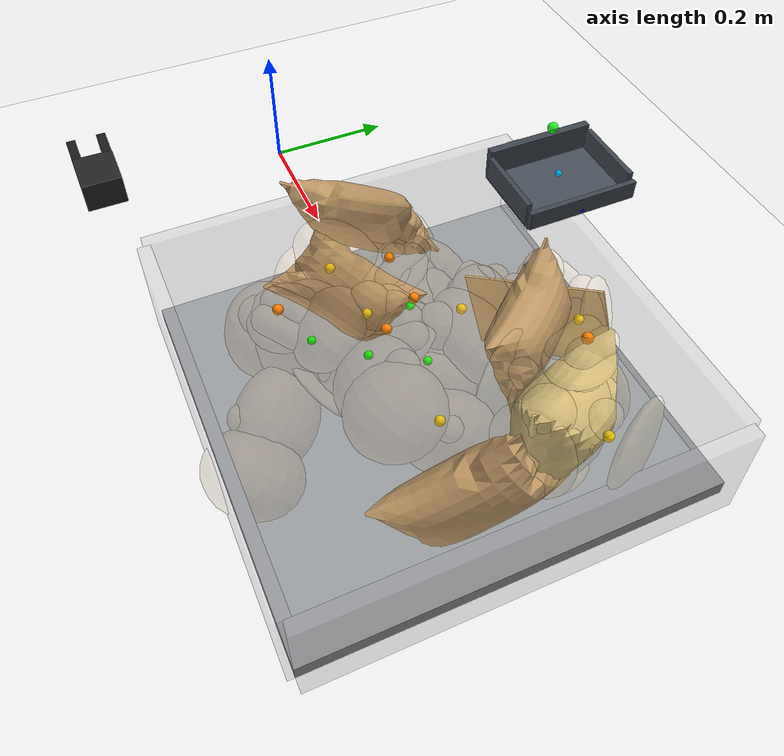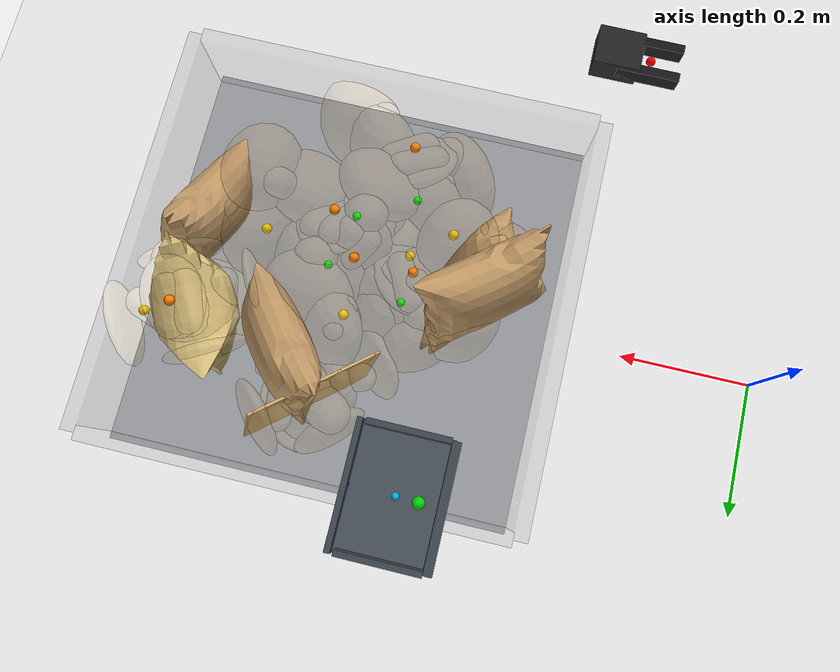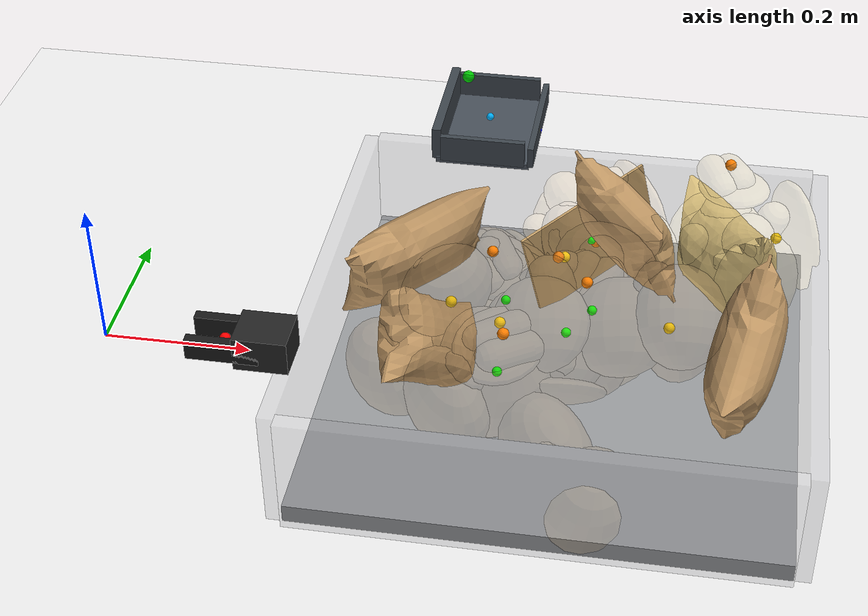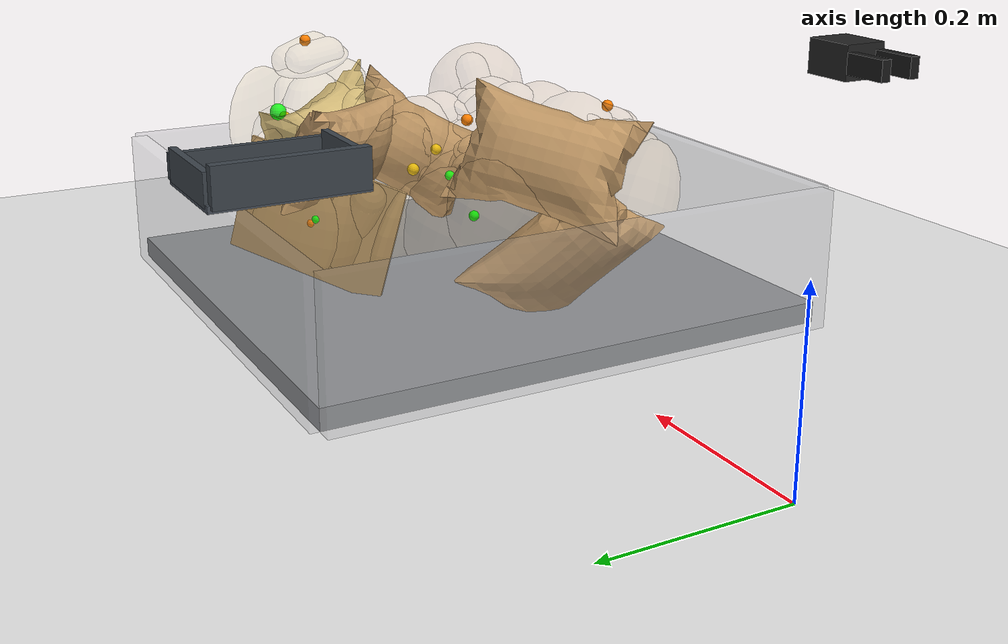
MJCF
<mujoco model="scene_preview">
  <compiler angle="radian" coordinate="local" inertiafromgeom="true" meshdir="D:/Michael/2025/01.Research/01.Parceldetection/16.Pybullet/bullet3-master (1)/bullet3-master/examples/pybullet/examples/DeformableTest/Sackcodex2/object"/>
  <option timestep="0.002" gravity="0 0 -9.81" integrator="implicitfast" iterations="100" tolerance="1e-8"/>
  <size memory="768M" nconmax="12000"/>

  <visual>
    <global azimuth="128" elevation="-20"/>
    <headlight ambient="0.34 0.34 0.34" diffuse="0.78 0.78 0.78" specular="0.15 0.15 0.15"/>
    <rgba haze="0.11 0.13 0.18 1"/>
  </visual>

  <default>
    <geom condim="4" friction="1.15 0.03 0.01" margin="0.003" solimp="0.93 0.98 0.003" solref="0.012 1"/>
    <joint damping="1.2" armature="0.002"/>
    <position kp="2500" forcelimited="true" forcerange="-420 420"/>
    <motor ctrllimited="true"/>
  </default>

  <asset>
    <mesh name="sack_0_visual_mesh" file="sack3.obj" scale="0.0725 0.0725 0.0746"/>
    <mesh name="sack_1_visual_mesh" file="sack3.obj" scale="0.0712 0.0712 0.0755"/>
    <mesh name="sack_2_visual_mesh" file="sack3.obj" scale="0.0737 0.0737 0.0780"/>
    <mesh name="sack_3_visual_mesh" file="sack2.obj" scale="0.0679 0.0679 0.0694"/>
    <mesh name="sack_4_visual_mesh" file="sack8.obj" scale="0.0725 0.0725 0.0798"/>
    <mesh name="sack_5_visual_mesh" file="sack3.obj" scale="0.0689 0.0689 0.0709"/>
  </asset>

  <worldbody>
    <light name="key" pos="0.85 0.15 1.8" dir="-0.2 -0.1 -1" directional="true"/>
    <geom name="floor" type="plane" size="2 2 0.1" rgba="0.93 0.93 0.93 1"/>
    <geom name="work_pad" type="box" pos="0.62 0 0.012" size="0.30 0.30 0.012" rgba="0.60 0.61 0.62 1" friction="1.4 0.05 0.01"/>
    <geom name="corral_front" type="box" pos="0.93 0.00 0.08" size="0.010 0.30 0.08" rgba="0.55 0.55 0.58 0.22" friction="1.0 0.03 0.01"/>
    <geom name="corral_back" type="box" pos="0.31 0.00 0.08" size="0.010 0.30 0.08" rgba="0.55 0.55 0.58 0.18" friction="1.0 0.03 0.01"/>
    <geom name="corral_left" type="box" pos="0.62 0.30 0.08" size="0.30 0.010 0.08" rgba="0.55 0.55 0.58 0.14" friction="1.0 0.03 0.01"/>
    <geom name="corral_right" type="box" pos="0.62 -0.30 0.08" size="0.30 0.010 0.08" rgba="0.55 0.55 0.58 0.14" friction="1.0 0.03 0.01"/>
    <camera name="overview" pos="1.22 0.00 0.92" xyaxes="0 1 0 -0.46 0 0.88"/>

    <body name="gripper_mocap" mocap="true" pos="0.36 -0.33 0.30" quat="0.707107 0 -0.707107 0"/>
    <body name="scoop_mocap" mocap="true" pos="0.42 0.28 0.20" quat="1 0 0 0"/>

    <body name="gripper_ctrl_base" pos="0.36 -0.33 0.30">
      <inertial pos="0 0 0" mass="0.001" diaginertia="1e-6 1e-6 1e-6"/>
      <joint name="gripper_ctrl_x" type="slide" axis="1 0 0" limited="true" range="0.20 1.00"/>
      <body name="gripper_ctrl_y_body">
        <inertial pos="0 0 0" mass="0.001" diaginertia="1e-6 1e-6 1e-6"/>
        <joint name="gripper_ctrl_y" type="slide" axis="0 1 0" limited="true" range="-0.60 0.60"/>
        <body name="gripper_ctrl_z_body">
          <inertial pos="0 0 0" mass="0.001" diaginertia="1e-6 1e-6 1e-6"/>
          <joint name="gripper_ctrl_z" type="slide" axis="0 0 1" limited="true" range="0.04 0.70"/>
          <body name="gripper_ctrl_yaw_body">
            <inertial pos="0 0 0" mass="0.001" diaginertia="1e-6 1e-6 1e-6"/>
            <joint name="gripper_ctrl_yaw" type="hinge" axis="0 0 1" limited="true" range="-3.1416 3.1416"/>
            <body name="gripper_ctrl_pitch_body">
              <inertial pos="0 0 0" mass="0.001" diaginertia="1e-6 1e-6 1e-6"/>
              <joint name="gripper_ctrl_pitch" type="hinge" axis="0 1 0" limited="true" range="-3.1416 3.1416"/>
              <body name="gripper_ctrl_roll_body">
                <inertial pos="0 0 0" mass="0.001" diaginertia="1e-6 1e-6 1e-6"/>
                <joint name="gripper_ctrl_roll" type="hinge" axis="1 0 0" limited="true" range="-3.1416 3.1416"/>
              </body>
            </body>
          </body>
        </body>
      </body>
    </body>

    <body name="scoop_ctrl_base" pos="0.42 0.28 0.20">
      <inertial pos="0 0 0" mass="0.001" diaginertia="1e-6 1e-6 1e-6"/>
      <joint name="scoop_ctrl_x" type="slide" axis="1 0 0" limited="true" range="0.20 1.00"/>
      <body name="scoop_ctrl_y_body">
        <inertial pos="0 0 0" mass="0.001" diaginertia="1e-6 1e-6 1e-6"/>
        <joint name="scoop_ctrl_y" type="slide" axis="0 1 0" limited="true" range="-0.60 0.60"/>
        <body name="scoop_ctrl_z_body">
          <inertial pos="0 0 0" mass="0.001" diaginertia="1e-6 1e-6 1e-6"/>
          <joint name="scoop_ctrl_z" type="slide" axis="0 0 1" limited="true" range="0.04 0.70"/>
          <body name="scoop_ctrl_yaw_body">
            <inertial pos="0 0 0" mass="0.001" diaginertia="1e-6 1e-6 1e-6"/>
            <joint name="scoop_ctrl_yaw" type="hinge" axis="0 0 1" limited="true" range="-3.1416 3.1416"/>
            <body name="scoop_ctrl_pitch_body">
              <inertial pos="0 0 0" mass="0.001" diaginertia="1e-6 1e-6 1e-6"/>
              <joint name="scoop_ctrl_pitch" type="hinge" axis="0 1 0" limited="true" range="-3.1416 3.1416"/>
              <body name="scoop_ctrl_roll_body">
                <inertial pos="0 0 0" mass="0.001" diaginertia="1e-6 1e-6 1e-6"/>
                <joint name="scoop_ctrl_roll" type="hinge" axis="1 0 0" limited="true" range="-3.1416 3.1416"/>
              </body>
            </body>
          </body>
        </body>
      </body>
    </body>

    <body name="gripper_tool" pos="0.36 -0.33 0.30" quat="0.707107 0 -0.707107 0">
      <freejoint name="gripper_tool_free"/>
      <inertial pos="0 0 0.04" mass="0.08" diaginertia="0.0002 0.0002 0.0002"/>
      <geom name="gripper_palm" type="box" pos="0 0 0.030" size="0.020 0.026 0.030" rgba="0.14 0.14 0.14 1"/>
      <body name="left_finger_body" pos="0 0 0.072">
        <joint name="left_finger_slide" type="slide" axis="0 1 0" limited="true" range="0.010 0.040" damping="12"/>
        <geom name="left_finger_geom" type="box" pos="0 0.020 0" size="0.012 0.006 0.040" rgba="0.10 0.10 0.10 1" friction="2.2 0.05 0.01"/>
      </body>
      <body name="right_finger_body" pos="0 0 0.072">
        <joint name="right_finger_slide" type="slide" axis="0 -1 0" limited="true" range="0.010 0.040" damping="12"/>
        <geom name="right_finger_geom" type="box" pos="0 -0.020 0" size="0.012 0.006 0.040" rgba="0.10 0.10 0.10 1" friction="2.2 0.05 0.01"/>
      </body>
      <site name="gripper_pinch_site" pos="0 0 0.074" size="0.006" rgba="1 0 0 1"/>
    </body>

    <body name="scoop_tool" pos="0.42 0.28 0.20" quat="1 0 0 0">
      <freejoint name="scoop_tool_free"/>
      <inertial pos="0 0 0.02" mass="0.10" diaginertia="0.0003 0.0003 0.0003"/>
      <geom name="scoop_plate" type="box" pos="0.062 0 0" size="0.062 0.085 0.004" rgba="0.28 0.31 0.35 1" friction="1.7 0.05 0.01"/>
      <geom name="scoop_lip" type="box" pos="0.126 0 0.014" size="0.004 0.085 0.014" rgba="0.24 0.27 0.30 1" friction="1.7 0.05 0.01"/>
      <geom name="scoop_left_rail" type="box" pos="0.062 0.082 0.018" size="0.056 0.004 0.018" rgba="0.24 0.27 0.30 1"/>
      <geom name="scoop_right_rail" type="box" pos="0.062 -0.082 0.018" size="0.056 0.004 0.018" rgba="0.24 0.27 0.30 1"/>
      <geom name="scoop_backstop" type="box" pos="0.000 0 0.022" size="0.006 0.082 0.022" rgba="0.24 0.27 0.30 1"/>
      <site name="scoop_tip_site" pos="0.126 0 0.005" size="0.005" rgba="0 0 1 1"/>
      <site name="scoop_center_site" pos="0.060 0 0.020" size="0.005" rgba="0 0.7 1 1"/>
      <site name="score_overlay_site" pos="0.030 0 0.080" size="0.008" rgba="0 1 0 0.8"/>
    </body>

    <body name="sack_0" pos="0.6279 -0.0815 0.1520" euler="-0.8383 -0.0933 -1.9720">
      <freejoint name="sack_0_free"/>

      <geom name="sack_0_visual" type="mesh" mesh="sack_0_visual_mesh" rgba="0.760 0.600 0.400 0.92" contype="0" conaffinity="0"/>
      <site name="sack_0_center_site" pos="0 0 0.000" size="0.006" rgba="0 1 0 1"/>
      <site name="sack_0_top_site" pos="-0.0011 -0.0124 0.0941" size="0.007" rgba="1 0.5 0 1"/>
      <site name="sack_0_side_site" pos="-0.0028 -0.0927 0.018" size="0.007" rgba="1 0.8 0 1"/>

      <geom name="sack_0_core_geom" type="ellipsoid" pos="0 0 0.0058" size="0.0432 0.0340 0.0742" mass="1.0276" rgba="0.760 0.600 0.400 0.12" friction="1.0 0.03 0.01"/>
      <geom name="sack_0_core_front" type="capsule" fromto="-0.0268 0 -0.0180 0.0472 0 0.0580" size="0.0286" mass="0.2447" rgba="0.760 0.600 0.400 0.10"/>
      <geom name="sack_0_core_left" type="capsule" fromto="-0.016 0.0645 -0.012 0.020 0.1244 0.054" size="0.0209" mass="0.4404" rgba="0.760 0.600 0.400 0.10"/>
      <geom name="sack_0_core_right" type="capsule" fromto="-0.016 -0.0645 -0.012 0.020 -0.1244 0.054" size="0.0187" mass="0.4404" rgba="0.760 0.600 0.400 0.10"/>

      <!-- 자루의 외형은 둥근 shell lobe로 보이게 하고, contact proxy는 반투명하게 숨긴다. -->
      <geom name="sack_0_shell_main_visual" type="ellipsoid" pos="-0.0014 -0.0107 -0.0061" size="0.0714 0.0636 0.0739" rgba="0.760 0.600 0.400 0.16" contype="0" conaffinity="0"/>
      <geom name="sack_0_shell_left_visual" type="ellipsoid" pos="0.0040 0.0731 0.0020" size="0.0485 0.0671 0.0606" rgba="0.760 0.600 0.400 0.14" contype="0" conaffinity="0"/>
      <geom name="sack_0_shell_right_visual" type="ellipsoid" pos="0.0040 -0.0679 0.0000" size="0.0457 0.0372 0.0592" rgba="0.760 0.600 0.400 0.12" contype="0" conaffinity="0"/>
      <geom name="sack_0_top_left_crown_visual" type="capsule" fromto="-0.0227 0.0161 0.0717 0.0227 0.0081 0.0757" size="0.0207" rgba="0.760 0.600 0.400 0.14" contype="0" conaffinity="0"/>
      <geom name="sack_0_top_right_crown_visual" type="capsule" fromto="-0.0227 -0.0081 0.0757 0.0227 -0.0161 0.0717" size="0.0207" rgba="0.760 0.600 0.400 0.14" contype="0" conaffinity="0"/>

      <body name="sack_0_bottom_support_proxy_body" pos="-0.0005 -0.0174 -0.0704">
        <joint name="sack_0_bottom_x" type="slide" axis="1 0 0" limited="true" range="-0.012 0.012" damping="18" stiffness="449.3"/>
        <joint name="sack_0_bottom_y" type="slide" axis="0 1 0" limited="true" range="-0.012 0.012" damping="18" stiffness="449.3"/>
        <joint name="sack_0_bottom_z" type="slide" axis="0 0 1" limited="true" range="-0.008 0.020" damping="24" stiffness="553.6"/>
        <geom name="sack_0_bottom_support_proxy" type="ellipsoid" size="0.0724 0.0648 0.0144" mass="0.1957" rgba="0.760 0.600 0.400 0.10" friction="1.55 0.05 0.01"/>
      </body>

      <body name="sack_0_top_grasp_proxy_body" pos="-0.0028 -0.0135 0.0661">
        <joint name="sack_0_top_x" type="slide" axis="1 0 0" limited="true" range="-0.018 0.018" damping="12" stiffness="172.5"/>
        <joint name="sack_0_top_y" type="slide" axis="0 1 0" limited="true" range="-0.018 0.018" damping="12" stiffness="172.5"/>
        <joint name="sack_0_top_z" type="slide" axis="0 0 1" limited="true" range="-0.040 0.010" damping="14" stiffness="126.4"/>
        <geom name="sack_0_top_grasp_proxy" type="ellipsoid" size="0.0567 0.0448 0.0172" mass="0.1468" rgba="0.760 0.600 0.400 0.10" friction="2.2 0.05 0.01"/>
      </body>

      <body name="sack_0_left_side_proxy_body" pos="-0.0004 0.1479 0.010">
        <joint name="sack_0_left_side_slide" type="slide" axis="0 -1 0" limited="true" range="-0.028 0.016" damping="16" stiffness="222.1"/>
        <geom name="sack_0_left_side_proxy" type="ellipsoid" size="0.0627 0.0538 0.0624" mass="0.1468" rgba="0.760 0.600 0.400 0.08" friction="1.25 0.04 0.01"/>
      </body>

      <body name="sack_0_right_side_proxy_body" pos="-0.0004 -0.1427 0.010">
        <joint name="sack_0_right_side_slide" type="slide" axis="0 1 0" limited="true" range="-0.028 0.016" damping="16" stiffness="206.1"/>
        <geom name="sack_0_right_side_proxy" type="ellipsoid" size="0.0602 0.0420 0.0611" mass="0.1468" rgba="0.760 0.600 0.400 0.08" friction="1.25 0.04 0.01"/>
      </body>

      <body name="sack_0_front_proxy_body" pos="0.0639 -0.0034 0.000">
        <joint name="sack_0_front_slide" type="slide" axis="-1 0 0" limited="true" range="-0.022 0.012" damping="15" stiffness="214.6"/>
        <geom name="sack_0_front_support_proxy" type="ellipsoid" size="0.0419 0.0628 0.0584" mass="0.1223" rgba="0.760 0.600 0.400 0.08" friction="1.20 0.04 0.01"/>
      </body>

      <body name="sack_0_back_proxy_body" pos="-0.0678 -0.0034 0.000">
        <joint name="sack_0_back_slide" type="slide" axis="1 0 0" limited="true" range="-0.022 0.012" damping="15" stiffness="198.6"/>
        <geom name="sack_0_back_support_proxy" type="ellipsoid" size="0.0385 0.0628 0.0584" mass="0.1223" rgba="0.760 0.600 0.400 0.08" friction="1.20 0.04 0.01"/>
      </body>

      <body name="sack_0_shape_proxy_body" pos="-0.0017 -0.1155 0.0384">
        <joint name="sack_0_bulge_y" type="slide" axis="0 1 0" limited="true" range="-0.020 0.020" damping="8" stiffness="107.1"/>
        <joint name="sack_0_bulge_z" type="slide" axis="0 0 1" limited="true" range="-0.014 0.028" damping="8" stiffness="105.4"/>
        <geom name="sack_0_shape_proxy" type="ellipsoid" size="0.0251 0.0222 0.0332" mass="0.0979" rgba="0.760 0.600 0.400 0.10"/>
      </body>
    </body>

    <body name="sack_1" pos="0.5515 -0.1333 0.1233" euler="0.4333 0.1500 -2.4376">
      <freejoint name="sack_1_free"/>

      <geom name="sack_1_visual" type="mesh" mesh="sack_1_visual_mesh" rgba="0.760 0.600 0.400 0.92" contype="0" conaffinity="0"/>
      <site name="sack_1_center_site" pos="0 0 0.000" size="0.006" rgba="0 1 0 1"/>
      <site name="sack_1_top_site" pos="0.0018 -0.0027 0.1045" size="0.007" rgba="1 0.5 0 1"/>
      <site name="sack_1_side_site" pos="0.0045 -0.1000 0.018" size="0.007" rgba="1 0.8 0 1"/>

      <geom name="sack_1_core_geom" type="ellipsoid" pos="0 0 0.0058" size="0.0439 0.0352 0.0762" mass="0.8726" rgba="0.760 0.600 0.400 0.12" friction="1.0 0.03 0.01"/>
      <geom name="sack_1_core_front" type="capsule" fromto="-0.0195 0 -0.0180 0.0545 0 0.0580" size="0.0297" mass="0.2078" rgba="0.760 0.600 0.400 0.10"/>
      <geom name="sack_1_core_left" type="capsule" fromto="-0.016 0.0686 -0.012 0.020 0.1338 0.054" size="0.0210" mass="0.3740" rgba="0.760 0.600 0.400 0.10"/>
      <geom name="sack_1_core_right" type="capsule" fromto="-0.016 -0.0686 -0.012 0.020 -0.1338 0.054" size="0.0188" mass="0.3740" rgba="0.760 0.600 0.400 0.10"/>

      <!-- 자루의 외형은 둥근 shell lobe로 보이게 하고, contact proxy는 반투명하게 숨긴다. -->
      <geom name="sack_1_shell_main_visual" type="ellipsoid" pos="0.0022 0.0055 -0.0059" size="0.0724 0.0668 0.0934" rgba="0.760 0.600 0.400 0.16" contype="0" conaffinity="0"/>
      <geom name="sack_1_shell_left_visual" type="ellipsoid" pos="0.0040 0.1148 0.0020" size="0.0492 0.0736 0.0766" rgba="0.760 0.600 0.400 0.14" contype="0" conaffinity="0"/>
      <geom name="sack_1_shell_right_visual" type="ellipsoid" pos="0.0040 -0.0396 0.0000" size="0.0463 0.0402 0.0747" rgba="0.760 0.600 0.400 0.12" contype="0" conaffinity="0"/>
      <geom name="sack_1_top_left_crown_visual" type="capsule" fromto="-0.0231 0.0175 0.0823 0.0231 0.0087 0.0863" size="0.0207" rgba="0.760 0.600 0.400 0.14" contype="0" conaffinity="0"/>
      <geom name="sack_1_top_right_crown_visual" type="capsule" fromto="-0.0231 -0.0087 0.0863 0.0231 -0.0175 0.0823" size="0.0207" rgba="0.760 0.600 0.400 0.14" contype="0" conaffinity="0"/>

      <body name="sack_1_bottom_support_proxy_body" pos="0.0008 -0.0064 -0.0931">
        <joint name="sack_1_bottom_x" type="slide" axis="1 0 0" limited="true" range="-0.012 0.012" damping="18" stiffness="480.8"/>
        <joint name="sack_1_bottom_y" type="slide" axis="0 1 0" limited="true" range="-0.012 0.012" damping="18" stiffness="480.8"/>
        <joint name="sack_1_bottom_z" type="slide" axis="0 0 1" limited="true" range="-0.008 0.020" damping="24" stiffness="592.0"/>
        <geom name="sack_1_bottom_support_proxy" type="ellipsoid" size="0.0734 0.0686 0.0133" mass="0.1662" rgba="0.760 0.600 0.400 0.10" friction="1.55 0.05 0.01"/>
      </body>

      <body name="sack_1_top_grasp_proxy_body" pos="0.0045 -0.0021 0.0765">
        <joint name="sack_1_top_x" type="slide" axis="1 0 0" limited="true" range="-0.018 0.018" damping="12" stiffness="184.7"/>
        <joint name="sack_1_top_y" type="slide" axis="0 1 0" limited="true" range="-0.018 0.018" damping="12" stiffness="184.7"/>
        <joint name="sack_1_top_z" type="slide" axis="0 0 1" limited="true" range="-0.040 0.010" damping="14" stiffness="136.9"/>
        <geom name="sack_1_top_grasp_proxy" type="ellipsoid" size="0.0578 0.0486 0.0171" mass="0.1247" rgba="0.760 0.600 0.400 0.10" friction="2.2 0.05 0.01"/>
      </body>

      <body name="sack_1_left_side_proxy_body" pos="0.0007 0.1934 0.010">
        <joint name="sack_1_left_side_slide" type="slide" axis="0 -1 0" limited="true" range="-0.028 0.016" damping="16" stiffness="243.1"/>
        <geom name="sack_1_left_side_proxy" type="ellipsoid" size="0.0638 0.0591 0.0851" mass="0.1247" rgba="0.760 0.600 0.400 0.08" friction="1.25 0.04 0.01"/>
      </body>

      <body name="sack_1_right_side_proxy_body" pos="0.0007 -0.1182 0.010">
        <joint name="sack_1_right_side_slide" type="slide" axis="0 1 0" limited="true" range="-0.028 0.016" damping="16" stiffness="225.3"/>
        <geom name="sack_1_right_side_proxy" type="ellipsoid" size="0.0612 0.0461 0.0834" mass="0.1247" rgba="0.760 0.600 0.400 0.08" friction="1.25 0.04 0.01"/>
      </body>

      <body name="sack_1_front_proxy_body" pos="0.0722 0.0018 0.000">
        <joint name="sack_1_front_slide" type="slide" axis="-1 0 0" limited="true" range="-0.022 0.012" damping="15" stiffness="230.4"/>
        <geom name="sack_1_front_support_proxy" type="ellipsoid" size="0.0454 0.0666 0.0811" mass="0.1039" rgba="0.760 0.600 0.400 0.08" friction="1.20 0.04 0.01"/>
      </body>

      <body name="sack_1_back_proxy_body" pos="-0.0660 0.0018 0.000">
        <joint name="sack_1_back_slide" type="slide" axis="1 0 0" limited="true" range="-0.022 0.012" damping="15" stiffness="212.6"/>
        <geom name="sack_1_back_support_proxy" type="ellipsoid" size="0.0418 0.0666 0.0811" mass="0.1039" rgba="0.760 0.600 0.400 0.08" friction="1.20 0.04 0.01"/>
      </body>

      <body name="sack_1_shape_proxy_body" pos="0.0027 -0.1143 0.0293">
        <joint name="sack_1_bulge_y" type="slide" axis="0 1 0" limited="true" range="-0.020 0.020" damping="8" stiffness="86.2"/>
        <joint name="sack_1_bulge_z" type="slide" axis="0 0 1" limited="true" range="-0.014 0.028" damping="8" stiffness="89.6"/>
        <geom name="sack_1_shape_proxy" type="ellipsoid" size="0.0253 0.0225 0.0331" mass="0.0831" rgba="0.760 0.600 0.400 0.10"/>
      </body>
    </body>

    <body name="sack_2" pos="0.6527 -0.0080 0.1315" euler="0.5730 -0.0502 1.3800">
      <freejoint name="sack_2_free"/>

      <geom name="sack_2_visual" type="mesh" mesh="sack_2_visual_mesh" rgba="0.760 0.600 0.400 0.92" contype="0" conaffinity="0"/>
      <site name="sack_2_center_site" pos="0 0 0.000" size="0.006" rgba="0 1 0 1"/>
      <site name="sack_2_top_site" pos="-0.0006 -0.0016 0.1035" size="0.007" rgba="1 0.5 0 1"/>
      <site name="sack_2_side_site" pos="-0.0015 -0.1007 0.018" size="0.007" rgba="1 0.8 0 1"/>

      <geom name="sack_2_core_geom" type="ellipsoid" pos="0 0 0.0059" size="0.0439 0.0352 0.0761" mass="1.0184" rgba="0.760 0.600 0.400 0.12" friction="1.0 0.03 0.01"/>
      <geom name="sack_2_core_front" type="capsule" fromto="-0.0255 0 -0.0180 0.0485 0 0.0580" size="0.0296" mass="0.2425" rgba="0.760 0.600 0.400 0.10"/>
      <geom name="sack_2_core_left" type="capsule" fromto="-0.016 0.0696 -0.012 0.020 0.1359 0.054" size="0.0211" mass="0.4365" rgba="0.760 0.600 0.400 0.10"/>
      <geom name="sack_2_core_right" type="capsule" fromto="-0.016 -0.0696 -0.012 0.020 -0.1359 0.054" size="0.0189" mass="0.4365" rgba="0.760 0.600 0.400 0.10"/>

      <!-- 자루의 외형은 둥근 shell lobe로 보이게 하고, contact proxy는 반투명하게 숨긴다. -->
      <geom name="sack_2_shell_main_visual" type="ellipsoid" pos="-0.0007 0.0073 -0.0032" size="0.0723 0.0667 0.0849" rgba="0.760 0.600 0.400 0.16" contype="0" conaffinity="0"/>
      <geom name="sack_2_shell_left_visual" type="ellipsoid" pos="0.0040 0.1205 0.0020" size="0.0492 0.0751 0.0696" rgba="0.760 0.600 0.400 0.14" contype="0" conaffinity="0"/>
      <geom name="sack_2_shell_right_visual" type="ellipsoid" pos="0.0040 -0.0370 0.0000" size="0.0463 0.0408 0.0679" rgba="0.760 0.600 0.400 0.12" contype="0" conaffinity="0"/>
      <geom name="sack_2_top_left_crown_visual" type="capsule" fromto="-0.0231 0.0174 0.0834 0.0231 0.0087 0.0874" size="0.0207" rgba="0.760 0.600 0.400 0.14" contype="0" conaffinity="0"/>
      <geom name="sack_2_top_right_crown_visual" type="capsule" fromto="-0.0231 -0.0087 0.0874 0.0231 -0.0174 0.0834" size="0.0207" rgba="0.760 0.600 0.400 0.14" contype="0" conaffinity="0"/>

      <body name="sack_2_bottom_support_proxy_body" pos="-0.0003 -0.0127 -0.0831">
        <joint name="sack_2_bottom_x" type="slide" axis="1 0 0" limited="true" range="-0.012 0.012" damping="18" stiffness="479.3"/>
        <joint name="sack_2_bottom_y" type="slide" axis="0 1 0" limited="true" range="-0.012 0.012" damping="18" stiffness="479.3"/>
        <joint name="sack_2_bottom_z" type="slide" axis="0 0 1" limited="true" range="-0.008 0.020" damping="24" stiffness="590.3"/>
        <geom name="sack_2_bottom_support_proxy" type="ellipsoid" size="0.0733 0.0685 0.0134" mass="0.1940" rgba="0.760 0.600 0.400 0.10" friction="1.55 0.05 0.01"/>
      </body>

      <body name="sack_2_top_grasp_proxy_body" pos="-0.0015 -0.0009 0.0755">
        <joint name="sack_2_top_x" type="slide" axis="1 0 0" limited="true" range="-0.018 0.018" damping="12" stiffness="184.2"/>
        <joint name="sack_2_top_y" type="slide" axis="0 1 0" limited="true" range="-0.018 0.018" damping="12" stiffness="184.2"/>
        <joint name="sack_2_top_z" type="slide" axis="0 0 1" limited="true" range="-0.040 0.010" damping="14" stiffness="136.4"/>
        <geom name="sack_2_top_grasp_proxy" type="ellipsoid" size="0.0577 0.0485 0.0154" mass="0.1455" rgba="0.760 0.600 0.400 0.10" friction="2.2 0.05 0.01"/>
      </body>

      <body name="sack_2_left_side_proxy_body" pos="-0.0002 0.1989 0.010">
        <joint name="sack_2_left_side_slide" type="slide" axis="0 -1 0" limited="true" range="-0.028 0.016" damping="16" stiffness="242.4"/>
        <geom name="sack_2_left_side_proxy" type="ellipsoid" size="0.0637 0.0603 0.0751" mass="0.1455" rgba="0.760 0.600 0.400 0.08" friction="1.25 0.04 0.01"/>
      </body>

      <body name="sack_2_right_side_proxy_body" pos="-0.0002 -0.1155 0.010">
        <joint name="sack_2_right_side_slide" type="slide" axis="0 1 0" limited="true" range="-0.028 0.016" damping="16" stiffness="224.7"/>
        <geom name="sack_2_right_side_proxy" type="ellipsoid" size="0.0612 0.0470 0.0736" mass="0.1455" rgba="0.760 0.600 0.400 0.08" friction="1.25 0.04 0.01"/>
      </body>

      <body name="sack_2_front_proxy_body" pos="0.0662 0.0023 0.000">
        <joint name="sack_2_front_slide" type="slide" axis="-1 0 0" limited="true" range="-0.022 0.012" damping="15" stiffness="229.7"/>
        <geom name="sack_2_front_support_proxy" type="ellipsoid" size="0.0462 0.0665 0.0711" mass="0.1212" rgba="0.760 0.600 0.400 0.08" friction="1.20 0.04 0.01"/>
      </body>

      <body name="sack_2_back_proxy_body" pos="-0.0683 0.0023 0.000">
        <joint name="sack_2_back_slide" type="slide" axis="1 0 0" limited="true" range="-0.022 0.012" damping="15" stiffness="211.9"/>
        <geom name="sack_2_back_support_proxy" type="ellipsoid" size="0.0425 0.0665 0.0711" mass="0.1212" rgba="0.760 0.600 0.400 0.08" friction="1.20 0.04 0.01"/>
      </body>

      <body name="sack_2_shape_proxy_body" pos="-0.0009 -0.1155 0.0298">
        <joint name="sack_2_bulge_y" type="slide" axis="0 1 0" limited="true" range="-0.020 0.020" damping="8" stiffness="87.1"/>
        <joint name="sack_2_bulge_z" type="slide" axis="0 0 1" limited="true" range="-0.014 0.028" damping="8" stiffness="90.3"/>
        <geom name="sack_2_shape_proxy" type="ellipsoid" size="0.0253 0.0226 0.0314" mass="0.0970" rgba="0.760 0.600 0.400 0.10"/>
      </body>
    </body>

    <body name="sack_3" pos="0.6343 0.1735 0.1076" euler="0.1888 -0.1839 2.3164">
      <freejoint name="sack_3_free"/>

      <geom name="sack_3_visual" type="mesh" mesh="sack_3_visual_mesh" rgba="0.820 0.670 0.440 0.92" contype="0" conaffinity="0"/>
      <site name="sack_3_center_site" pos="0 0 0.000" size="0.006" rgba="0 1 0 1"/>
      <site name="sack_3_top_site" pos="-0.0016 -0.0050 -0.0067" size="0.007" rgba="1 0.5 0 1"/>
      <site name="sack_3_side_site" pos="-0.0041 -0.0608 0.018" size="0.007" rgba="1 0.8 0 1"/>

      <geom name="sack_3_core_geom" type="ellipsoid" pos="0 0 0.0054" size="0.0449 0.0358 0.0630" mass="0.8102" rgba="0.820 0.670 0.440 0.12" friction="1.0 0.03 0.01"/>
      <geom name="sack_3_core_front" type="capsule" fromto="-0.0281 0 -0.0180 0.0459 0 0.0580" size="0.0284" mass="0.1929" rgba="0.820 0.670 0.440 0.10"/>
      <geom name="sack_3_core_left" type="capsule" fromto="-0.016 0.0377 -0.012 0.020 0.0630 0.054" size="0.0202" mass="0.3472" rgba="0.820 0.670 0.440 0.10"/>
      <geom name="sack_3_core_right" type="capsule" fromto="-0.016 -0.0377 -0.012 0.020 -0.0630 0.054" size="0.0181" mass="0.3472" rgba="0.820 0.670 0.440 0.10"/>

      <!-- 자루의 외형은 둥근 shell lobe로 보이게 하고, contact proxy는 반투명하게 숨긴다. -->
      <geom name="sack_3_shell_main_visual" type="ellipsoid" pos="-0.0021 0.0016 -0.0308" size="0.0681 0.0557 0.0835" rgba="0.820 0.670 0.440 0.16" contype="0" conaffinity="0"/>
      <geom name="sack_3_shell_left_visual" type="ellipsoid" pos="0.0040 0.0361 0.0020" size="0.0463 0.0249 0.0685" rgba="0.820 0.670 0.440 0.14" contype="0" conaffinity="0"/>
      <geom name="sack_3_shell_right_visual" type="ellipsoid" pos="0.0040 -0.0165 0.0000" size="0.0436 0.0181 0.0668" rgba="0.820 0.670 0.440 0.12" contype="0" conaffinity="0"/>
      <geom name="sack_3_top_left_crown_visual" type="capsule" fromto="-0.0214 0.0129 -0.0484 0.0214 0.0065 -0.0444" size="0.0204" rgba="0.820 0.670 0.440 0.14" contype="0" conaffinity="0"/>
      <geom name="sack_3_top_right_crown_visual" type="capsule" fromto="-0.0214 -0.0065 -0.0444 0.0214 -0.0129 -0.0484" size="0.0204" rgba="0.820 0.670 0.440 0.14" contype="0" conaffinity="0"/>

      <body name="sack_3_bottom_support_proxy_body" pos="-0.0007 -0.0086 -0.0819">
        <joint name="sack_3_bottom_x" type="slide" axis="1 0 0" limited="true" range="-0.012 0.012" damping="18" stiffness="442.1"/>
        <joint name="sack_3_bottom_y" type="slide" axis="0 1 0" limited="true" range="-0.012 0.012" damping="18" stiffness="442.1"/>
        <joint name="sack_3_bottom_z" type="slide" axis="0 0 1" limited="true" range="-0.008 0.020" damping="24" stiffness="544.7"/>
        <geom name="sack_3_bottom_support_proxy" type="ellipsoid" size="0.0694 0.0559 0.0146" mass="0.1543" rgba="0.820 0.670 0.440 0.10" friction="1.55 0.05 0.01"/>
      </body>

      <body name="sack_3_top_grasp_proxy_body" pos="-0.0041 -0.0049 -0.0347">
        <joint name="sack_3_top_x" type="slide" axis="1 0 0" limited="true" range="-0.018 0.018" damping="12" stiffness="169.7"/>
        <joint name="sack_3_top_y" type="slide" axis="0 1 0" limited="true" range="-0.018 0.018" damping="12" stiffness="169.7"/>
        <joint name="sack_3_top_z" type="slide" axis="0 0 1" limited="true" range="-0.040 0.010" damping="14" stiffness="124.0"/>
        <geom name="sack_3_top_grasp_proxy" type="ellipsoid" size="0.0534 0.0359 0.0331" mass="0.1157" rgba="0.820 0.670 0.440 0.10" friction="2.2 0.05 0.01"/>
      </body>

      <body name="sack_3_left_side_proxy_body" pos="-0.0007 0.1020 0.010">
        <joint name="sack_3_left_side_slide" type="slide" axis="0 -1 0" limited="true" range="-0.028 0.016" damping="16" stiffness="216.0"/>
        <geom name="sack_3_left_side_proxy" type="ellipsoid" size="0.0594 0.0193 0.0739" mass="0.1157" rgba="0.820 0.670 0.440 0.08" friction="1.25 0.04 0.01"/>
      </body>

      <body name="sack_3_right_side_proxy_body" pos="-0.0007 -0.0824 0.010">
        <joint name="sack_3_right_side_slide" type="slide" axis="0 1 0" limited="true" range="-0.028 0.016" damping="16" stiffness="200.4"/>
        <geom name="sack_3_right_side_proxy" type="ellipsoid" size="0.0570 0.0151 0.0724" mass="0.1157" rgba="0.820 0.670 0.440 0.08" friction="1.25 0.04 0.01"/>
      </body>

      <body name="sack_3_front_proxy_body" pos="0.0593 0.0005 0.000">
        <joint name="sack_3_front_slide" type="slide" axis="-1 0 0" limited="true" range="-0.022 0.012" damping="15" stiffness="211.0"/>
        <geom name="sack_3_front_support_proxy" type="ellipsoid" size="0.0189 0.0539 0.0699" mass="0.0965" rgba="0.820 0.670 0.440 0.08" friction="1.20 0.04 0.01"/>
      </body>

      <body name="sack_3_back_proxy_body" pos="-0.0650 0.0005 0.000">
        <joint name="sack_3_back_slide" type="slide" axis="1 0 0" limited="true" range="-0.022 0.012" damping="15" stiffness="195.4"/>
        <geom name="sack_3_back_support_proxy" type="ellipsoid" size="0.0174 0.0539 0.0699" mass="0.0965" rgba="0.820 0.670 0.440 0.08" friction="1.20 0.04 0.01"/>
      </body>

      <body name="sack_3_shape_proxy_body" pos="-0.0025 -0.0289 0.0405">
        <joint name="sack_3_bulge_y" type="slide" axis="0 1 0" limited="true" range="-0.020 0.020" damping="8" stiffness="112.0"/>
        <joint name="sack_3_bulge_z" type="slide" axis="0 0 1" limited="true" range="-0.014 0.028" damping="8" stiffness="109.0"/>
        <geom name="sack_3_shape_proxy" type="ellipsoid" size="0.0242 0.0204 0.0491" mass="0.0772" rgba="0.820 0.670 0.440 0.10"/>
      </body>
    </body>

    <body name="sack_4" pos="0.8141 0.0981 0.1534" euler="-0.1342 -0.1167 -1.0762">
      <freejoint name="sack_4_free"/>

      <geom name="sack_4_visual" type="mesh" mesh="sack_4_visual_mesh" rgba="0.840 0.740 0.480 0.92" contype="0" conaffinity="0"/>
      <site name="sack_4_center_site" pos="0 0 0.000" size="0.006" rgba="0 1 0 1"/>
      <site name="sack_4_top_site" pos="0.0046 0.0053 0.1321" size="0.007" rgba="1 0.5 0 1"/>
      <site name="sack_4_side_site" pos="0.0114 0.0630 0.018" size="0.007" rgba="1 0.8 0 1"/>

      <geom name="sack_4_core_geom" type="ellipsoid" pos="0 0 0.0059" size="0.0520 0.0443 0.0902" mass="1.1620" rgba="0.840 0.740 0.480 0.12" friction="1.0 0.03 0.01"/>
      <geom name="sack_4_core_front" type="capsule" fromto="-0.0126 0 -0.0180 0.0614 0 0.0580" size="0.0310" mass="0.2767" rgba="0.840 0.740 0.480 0.10"/>
      <geom name="sack_4_core_left" type="capsule" fromto="-0.016 0.0343 -0.012 0.020 0.0553 0.054" size="0.0201" mass="0.4980" rgba="0.840 0.740 0.480 0.10"/>
      <geom name="sack_4_core_right" type="capsule" fromto="-0.016 -0.0343 -0.012 0.020 -0.0553 0.054" size="0.0181" mass="0.4980" rgba="0.840 0.740 0.480 0.10"/>

      <!-- 자루의 외형은 둥근 shell lobe로 보이게 하고, contact proxy는 반투명하게 숨긴다. -->
      <geom name="sack_4_shell_main_visual" type="ellipsoid" pos="0.0057 -0.0011 -0.0009" size="0.0690 0.0593 0.0833" rgba="0.840 0.740 0.480 0.16" contype="0" conaffinity="0"/>
      <geom name="sack_4_shell_left_visual" type="ellipsoid" pos="0.0040 0.0231 0.0020" size="0.0469 0.0197 0.0683" rgba="0.840 0.740 0.480 0.14" contype="0" conaffinity="0"/>
      <geom name="sack_4_shell_right_visual" type="ellipsoid" pos="0.0040 -0.0186 0.0000" size="0.0442 0.0157 0.0666" rgba="0.840 0.740 0.480 0.12" contype="0" conaffinity="0"/>
      <geom name="sack_4_top_left_crown_visual" type="capsule" fromto="-0.0220 0.0148 0.1138 0.0220 0.0074 0.1178" size="0.0196" rgba="0.840 0.740 0.480 0.14" contype="0" conaffinity="0"/>
      <geom name="sack_4_top_right_crown_visual" type="capsule" fromto="-0.0220 -0.0074 0.1178 0.0220 -0.0148 0.1138" size="0.0196" rgba="0.840 0.740 0.480 0.14" contype="0" conaffinity="0"/>

      <body name="sack_4_bottom_support_proxy_body" pos="0.0020 -0.0144 -0.0824">
        <joint name="sack_4_bottom_x" type="slide" axis="1 0 0" limited="true" range="-0.012 0.012" damping="18" stiffness="520.1"/>
        <joint name="sack_4_bottom_y" type="slide" axis="0 1 0" limited="true" range="-0.012 0.012" damping="18" stiffness="520.1"/>
        <joint name="sack_4_bottom_z" type="slide" axis="0 0 1" limited="true" range="-0.008 0.020" damping="24" stiffness="640.1"/>
        <geom name="sack_4_bottom_support_proxy" type="ellipsoid" size="0.0708 0.0610 0.0120" mass="0.2213" rgba="0.840 0.740 0.480 0.10" friction="1.55 0.05 0.01"/>
      </body>

      <body name="sack_4_top_grasp_proxy_body" pos="0.0114 0.0052 0.1041">
        <joint name="sack_4_top_x" type="slide" axis="1 0 0" limited="true" range="-0.018 0.018" damping="12" stiffness="200.0"/>
        <joint name="sack_4_top_y" type="slide" axis="0 1 0" limited="true" range="-0.018 0.018" damping="12" stiffness="200.0"/>
        <joint name="sack_4_top_z" type="slide" axis="0 0 1" limited="true" range="-0.040 0.010" damping="14" stiffness="150.0"/>
        <geom name="sack_4_top_grasp_proxy" type="ellipsoid" size="0.0550 0.0410 0.0138" mass="0.1660" rgba="0.840 0.740 0.480 0.10" friction="2.2 0.05 0.01"/>
      </body>

      <body name="sack_4_left_side_proxy_body" pos="0.0018 0.0941 0.010">
        <joint name="sack_4_left_side_slide" type="slide" axis="0 -1 0" limited="true" range="-0.028 0.016" damping="16" stiffness="269.8"/>
        <geom name="sack_4_left_side_proxy" type="ellipsoid" size="0.0610 0.0150 0.0744" mass="0.1660" rgba="0.840 0.740 0.480 0.08" friction="1.25 0.04 0.01"/>
      </body>

      <body name="sack_4_right_side_proxy_body" pos="0.0018 -0.0896 0.010">
        <joint name="sack_4_right_side_slide" type="slide" axis="0 1 0" limited="true" range="-0.028 0.016" damping="16" stiffness="249.8"/>
        <geom name="sack_4_right_side_proxy" type="ellipsoid" size="0.0585 0.0117 0.0729" mass="0.1660" rgba="0.840 0.740 0.480 0.08" friction="1.25 0.04 0.01"/>
      </body>

      <body name="sack_4_front_proxy_body" pos="0.0763 -0.0004 0.000">
        <joint name="sack_4_front_slide" type="slide" axis="-1 0 0" limited="true" range="-0.022 0.012" damping="15" stiffness="250.0"/>
        <geom name="sack_4_front_support_proxy" type="ellipsoid" size="0.0160 0.0590 0.0704" mass="0.1383" rgba="0.840 0.740 0.480 0.08" friction="1.20 0.04 0.01"/>
      </body>

      <body name="sack_4_back_proxy_body" pos="-0.0604 -0.0004 0.000">
        <joint name="sack_4_back_slide" type="slide" axis="1 0 0" limited="true" range="-0.022 0.012" damping="15" stiffness="230.0"/>
        <geom name="sack_4_back_support_proxy" type="ellipsoid" size="0.0147 0.0590 0.0704" mass="0.1383" rgba="0.840 0.740 0.480 0.08" friction="1.20 0.04 0.01"/>
      </body>

      <body name="sack_4_shape_proxy_body" pos="0.0068 0.0198 0.0180">
        <joint name="sack_4_bulge_y" type="slide" axis="0 1 0" limited="true" range="-0.020 0.020" damping="8" stiffness="60.0"/>
        <joint name="sack_4_bulge_z" type="slide" axis="0 0 1" limited="true" range="-0.014 0.028" damping="8" stiffness="70.0"/>
        <geom name="sack_4_shape_proxy" type="ellipsoid" size="0.0241 0.0202 0.0298" mass="0.1107" rgba="0.840 0.740 0.480 0.10"/>
      </body>
    </body>

    <body name="sack_5" pos="0.5405 0.0183 0.1137" euler="0.2722 -0.1854 2.2613">
      <freejoint name="sack_5_free"/>

      <geom name="sack_5_visual" type="mesh" mesh="sack_5_visual_mesh" rgba="0.760 0.600 0.400 0.92" contype="0" conaffinity="0"/>
      <site name="sack_5_center_site" pos="0 0 0.000" size="0.006" rgba="0 1 0 1"/>
      <site name="sack_5_top_site" pos="-0.0022 -0.0039 0.0979" size="0.007" rgba="1 0.5 0 1"/>
      <site name="sack_5_side_site" pos="-0.0055 -0.0910 0.018" size="0.007" rgba="1 0.8 0 1"/>

      <geom name="sack_5_core_geom" type="ellipsoid" pos="0 0 0.0058" size="0.0431 0.0340 0.0742" mass="0.8173" rgba="0.760 0.600 0.400 0.12" friction="1.0 0.03 0.01"/>
      <geom name="sack_5_core_front" type="capsule" fromto="-0.0295 0 -0.0180 0.0445 0 0.0580" size="0.0286" mass="0.1946" rgba="0.760 0.600 0.400 0.10"/>
      <geom name="sack_5_core_left" type="capsule" fromto="-0.016 0.0627 -0.012 0.020 0.1201 0.054" size="0.0209" mass="0.3503" rgba="0.760 0.600 0.400 0.10"/>
      <geom name="sack_5_core_right" type="capsule" fromto="-0.016 -0.0627 -0.012 0.020 -0.1201 0.054" size="0.0187" mass="0.3503" rgba="0.760 0.600 0.400 0.10"/>

      <!-- 자루의 외형은 둥근 shell lobe로 보이게 하고, contact proxy는 반투명하게 숨긴다. -->
      <geom name="sack_5_shell_main_visual" type="ellipsoid" pos="-0.0028 0.0035 -0.0056" size="0.0714 0.0635 0.0818" rgba="0.760 0.600 0.400 0.16" contype="0" conaffinity="0"/>
      <geom name="sack_5_shell_left_visual" type="ellipsoid" pos="0.0040 0.0970 0.0020" size="0.0485 0.0642 0.0671" rgba="0.760 0.600 0.400 0.14" contype="0" conaffinity="0"/>
      <geom name="sack_5_shell_right_visual" type="ellipsoid" pos="0.0040 -0.0378 0.0000" size="0.0457 0.0359 0.0654" rgba="0.760 0.600 0.400 0.12" contype="0" conaffinity="0"/>
      <geom name="sack_5_top_left_crown_visual" type="capsule" fromto="-0.0227 0.0161 0.0760 0.0227 0.0080 0.0800" size="0.0207" rgba="0.760 0.600 0.400 0.14" contype="0" conaffinity="0"/>
      <geom name="sack_5_top_right_crown_visual" type="capsule" fromto="-0.0227 -0.0080 0.0800 0.0227 -0.0161 0.0760" size="0.0207" rgba="0.760 0.600 0.400 0.14" contype="0" conaffinity="0"/>

      <body name="sack_5_bottom_support_proxy_body" pos="-0.0010 0.0051 -0.0795">
        <joint name="sack_5_bottom_x" type="slide" axis="1 0 0" limited="true" range="-0.012 0.012" damping="18" stiffness="449.1"/>
        <joint name="sack_5_bottom_y" type="slide" axis="0 1 0" limited="true" range="-0.012 0.012" damping="18" stiffness="449.1"/>
        <joint name="sack_5_bottom_z" type="slide" axis="0 0 1" limited="true" range="-0.008 0.020" damping="24" stiffness="553.3"/>
        <geom name="sack_5_bottom_support_proxy" type="ellipsoid" size="0.0724 0.0647 0.0144" mass="0.1557" rgba="0.760 0.600 0.400 0.10" friction="1.55 0.05 0.01"/>
      </body>

      <body name="sack_5_top_grasp_proxy_body" pos="-0.0055 -0.0036 0.0699">
        <joint name="sack_5_top_x" type="slide" axis="1 0 0" limited="true" range="-0.018 0.018" damping="12" stiffness="172.4"/>
        <joint name="sack_5_top_y" type="slide" axis="0 1 0" limited="true" range="-0.018 0.018" damping="12" stiffness="172.4"/>
        <joint name="sack_5_top_z" type="slide" axis="0 0 1" limited="true" range="-0.040 0.010" damping="14" stiffness="126.4"/>
        <geom name="sack_5_top_grasp_proxy" type="ellipsoid" size="0.0567 0.0447 0.0169" mass="0.1168" rgba="0.760 0.600 0.400 0.10" friction="2.2 0.05 0.01"/>
      </body>

      <body name="sack_5_left_side_proxy_body" pos="-0.0009 0.1717 0.010">
        <joint name="sack_5_left_side_slide" type="slide" axis="0 -1 0" limited="true" range="-0.028 0.016" damping="16" stiffness="222.0"/>
        <geom name="sack_5_left_side_proxy" type="ellipsoid" size="0.0627 0.0514 0.0715" mass="0.1168" rgba="0.760 0.600 0.400 0.08" friction="1.25 0.04 0.01"/>
      </body>

      <body name="sack_5_right_side_proxy_body" pos="-0.0009 -0.1125 0.010">
        <joint name="sack_5_right_side_slide" type="slide" axis="0 1 0" limited="true" range="-0.028 0.016" damping="16" stiffness="206.0"/>
        <geom name="sack_5_right_side_proxy" type="ellipsoid" size="0.0602 0.0401 0.0701" mass="0.1168" rgba="0.760 0.600 0.400 0.08" friction="1.25 0.04 0.01"/>
      </body>

      <body name="sack_5_front_proxy_body" pos="0.0612 0.0011 0.000">
        <joint name="sack_5_front_slide" type="slide" axis="-1 0 0" limited="true" range="-0.022 0.012" damping="15" stiffness="214.5"/>
        <geom name="sack_5_front_support_proxy" type="ellipsoid" size="0.0403 0.0627 0.0675" mass="0.0973" rgba="0.760 0.600 0.400 0.08" friction="1.20 0.04 0.01"/>
      </body>

      <body name="sack_5_back_proxy_body" pos="-0.0689 0.0011 0.000">
        <joint name="sack_5_back_slide" type="slide" axis="1 0 0" limited="true" range="-0.022 0.012" damping="15" stiffness="198.5"/>
        <geom name="sack_5_back_support_proxy" type="ellipsoid" size="0.0371 0.0627 0.0675" mass="0.0973" rgba="0.760 0.600 0.400 0.08" friction="1.20 0.04 0.01"/>
      </body>

      <body name="sack_5_shape_proxy_body" pos="-0.0033 -0.0989 0.0385">
        <joint name="sack_5_bulge_y" type="slide" axis="0 1 0" limited="true" range="-0.020 0.020" damping="8" stiffness="107.3"/>
        <joint name="sack_5_bulge_z" type="slide" axis="0 0 1" limited="true" range="-0.014 0.028" damping="8" stiffness="105.5"/>
        <geom name="sack_5_shape_proxy" type="ellipsoid" size="0.0251 0.0221 0.0329" mass="0.0778" rgba="0.760 0.600 0.400 0.10"/>
      </body>
    </body>
  </worldbody>

  <equality>
    <weld name="gripper_follow" body1="gripper_mocap" body2="gripper_tool" torquescale="400" solref="0.002 1" solimp="0.99 0.999 0.0001"/>
    <weld name="scoop_follow" body1="scoop_mocap" body2="scoop_tool" torquescale="500" solref="0.002 1" solimp="0.99 0.999 0.0001"/>
  </equality>

  <actuator>
    <position name="gripper_ctrl_x_act" joint="gripper_ctrl_x" ctrlrange="0.20 1.00" kp="3500" forcerange="-300 300"/>
    <position name="gripper_ctrl_y_act" joint="gripper_ctrl_y" ctrlrange="-0.60 0.60" kp="3500" forcerange="-300 300"/>
    <position name="gripper_ctrl_z_act" joint="gripper_ctrl_z" ctrlrange="0.04 0.70" kp="3500" forcerange="-300 300"/>
    <position name="gripper_ctrl_yaw_act" joint="gripper_ctrl_yaw" ctrlrange="-3.1416 3.1416" kp="1800" forcerange="-250 250"/>
    <position name="gripper_ctrl_pitch_act" joint="gripper_ctrl_pitch" ctrlrange="-3.1416 3.1416" kp="1800" forcerange="-250 250"/>
    <position name="gripper_ctrl_roll_act" joint="gripper_ctrl_roll" ctrlrange="-3.1416 3.1416" kp="1800" forcerange="-250 250"/>
    <position name="scoop_ctrl_x_act" joint="scoop_ctrl_x" ctrlrange="0.20 1.00" kp="3500" forcerange="-300 300"/>
    <position name="scoop_ctrl_y_act" joint="scoop_ctrl_y" ctrlrange="-0.60 0.60" kp="3500" forcerange="-300 300"/>
    <position name="scoop_ctrl_z_act" joint="scoop_ctrl_z" ctrlrange="0.04 0.70" kp="3500" forcerange="-300 300"/>
    <position name="scoop_ctrl_yaw_act" joint="scoop_ctrl_yaw" ctrlrange="-3.1416 3.1416" kp="1800" forcerange="-250 250"/>
    <position name="scoop_ctrl_pitch_act" joint="scoop_ctrl_pitch" ctrlrange="-3.1416 3.1416" kp="1800" forcerange="-250 250"/>
    <position name="scoop_ctrl_roll_act" joint="scoop_ctrl_roll" ctrlrange="-3.1416 3.1416" kp="1800" forcerange="-250 250"/>
    <position name="left_finger_act" joint="left_finger_slide" ctrlrange="0.010 0.040" kp="2800" forcerange="-220 220"/>
    <position name="right_finger_act" joint="right_finger_slide" ctrlrange="0.010 0.040" kp="2800" forcerange="-220 220"/>
  </actuator>

  <contact>
    <exclude body1="sack_0_top_grasp_proxy_body" body2="sack_0_left_side_proxy_body"/>
    <exclude body1="sack_0_top_grasp_proxy_body" body2="sack_0_right_side_proxy_body"/>
    <exclude body1="sack_1_top_grasp_proxy_body" body2="sack_1_left_side_proxy_body"/>
    <exclude body1="sack_1_top_grasp_proxy_body" body2="sack_1_right_side_proxy_body"/>
    <exclude body1="sack_2_top_grasp_proxy_body" body2="sack_2_left_side_proxy_body"/>
    <exclude body1="sack_2_top_grasp_proxy_body" body2="sack_2_right_side_proxy_body"/>
    <exclude body1="sack_3_top_grasp_proxy_body" body2="sack_3_left_side_proxy_body"/>
    <exclude body1="sack_3_top_grasp_proxy_body" body2="sack_3_right_side_proxy_body"/>
    <exclude body1="sack_4_top_grasp_proxy_body" body2="sack_4_left_side_proxy_body"/>
    <exclude body1="sack_4_top_grasp_proxy_body" body2="sack_4_right_side_proxy_body"/>
    <exclude body1="sack_5_top_grasp_proxy_body" body2="sack_5_left_side_proxy_body"/>
    <exclude body1="sack_5_top_grasp_proxy_body" body2="sack_5_right_side_proxy_body"/>
  </contact>
</mujoco>
